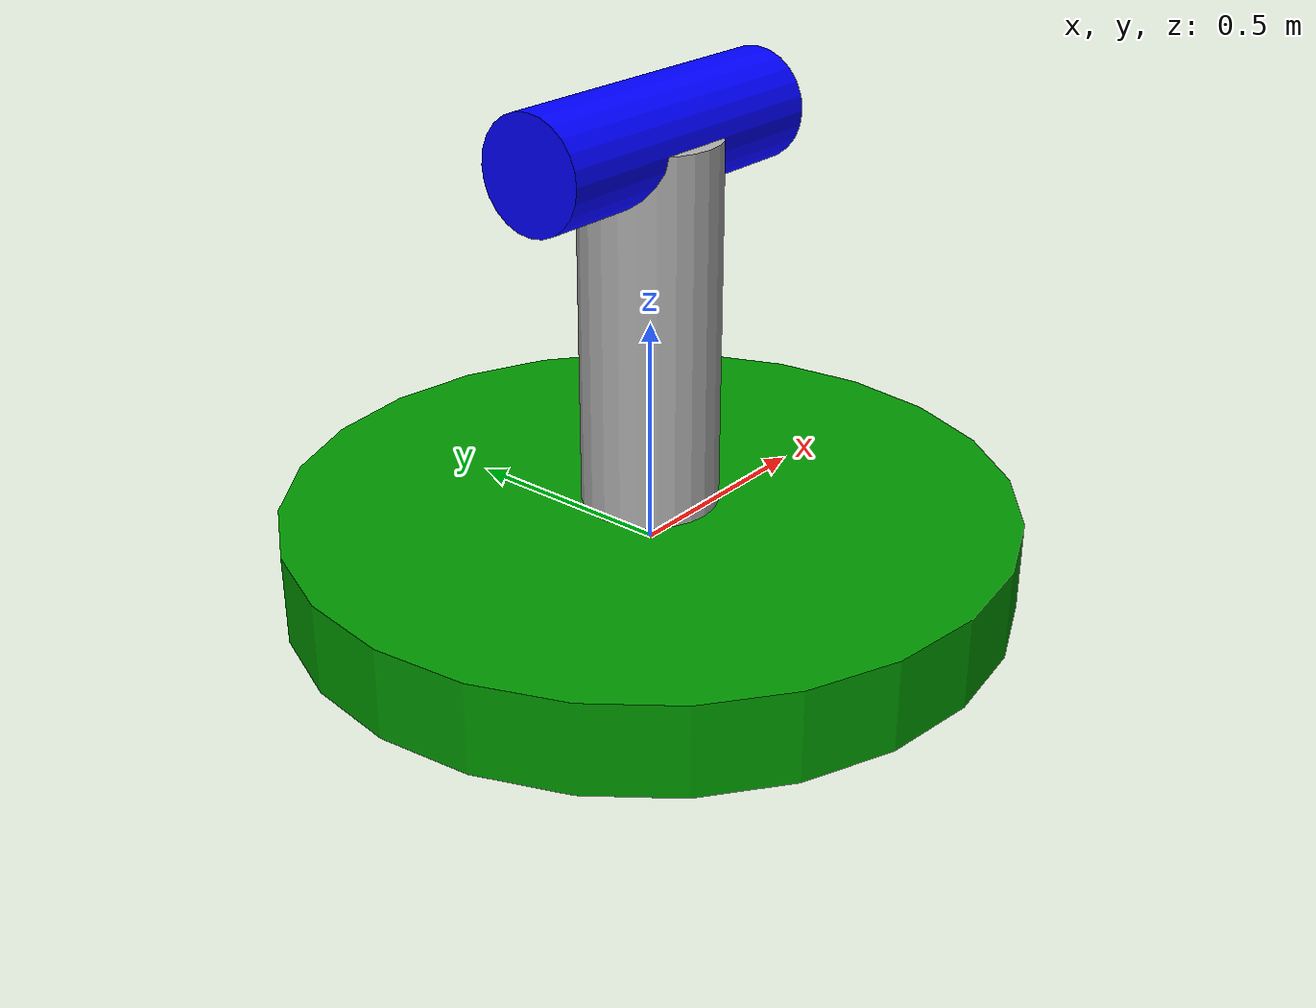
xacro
<?xml version="1.0"?>
<robot name="ackermann_rover" xmlns:xacro="http://www.ros.org/wiki/xacro">

  <xacro:property name="base_radius" value="0.8"/>
  <xacro:property name="base_height" value="0.2"/>

  <xacro:property name="shoulder_radius" value="0.15"/>
  <xacro:property name="shoulder_length" value="0.8"/>

  <xacro:property name="wrist_radius" value="0.12"/>
  <xacro:property name="wrist_length" value="0.7"/>

  <material name="grey">
    <color rgba="0.7 0.7 0.7 1"/>
  </material>

  <material name="green">
    <color rgba="0 0.6 0 1"/>
  </material>

  <material name="blue">
    <color rgba="0 0 1 1"/>
  </material>

  <xacro:macro name="cyl_link" params="name radius length rpy color">
    <link name="${name}">
      <visual>
        <geometry>
          <cylinder radius="${radius}" length="${length}"/>
        </geometry>
        <origin xyz="0 0 0" rpy="${rpy}"/>
        <material name="${color}"/>
      </visual>
    </link>
  </xacro:macro>

  <xacro:cyl_link name="base" radius="${base_radius}" length="${base_height}" rpy="0 0 0" color="green"/>
  <xacro:cyl_link name="shoulder" radius="${shoulder_radius}" length="${shoulder_length}" rpy="0 0 0" color="grey"/>
  <xacro:cyl_link name="wrist" radius="${wrist_radius}" length="${wrist_length}" rpy="0 1.5708 0" color="blue"/>

  <joint name="base_to_shoulder" type="revolute">
    <parent link="base"/>
    <child link="shoulder"/>
    <origin xyz="0 0 0.50" rpy="0 0 0"/>
    <axis xyz="0 0 1"/>
    <limit lower="-3.14" upper="3.14" effort="50" velocity="1.0"/>
  </joint>

  <joint name="shoulder_to_wrist" type="revolute">
    <parent link="shoulder"/>
    <child link="wrist"/>
    <origin xyz="0 0 0.40" rpy="0 0 0"/>
    <axis xyz="0 1 0"/>
    <limit lower="-1.57" upper="1.57" effort="50" velocity="1.0"/>
  </joint>

</robot>
